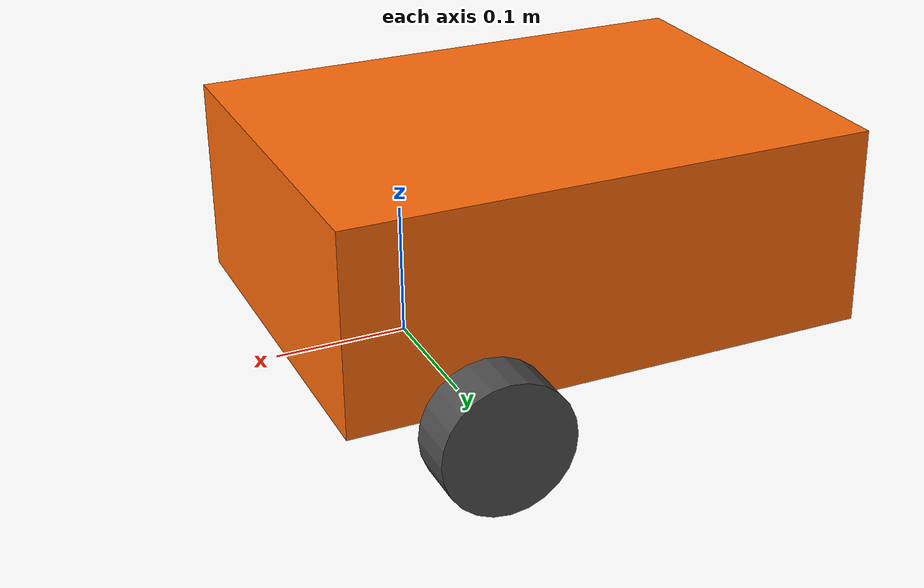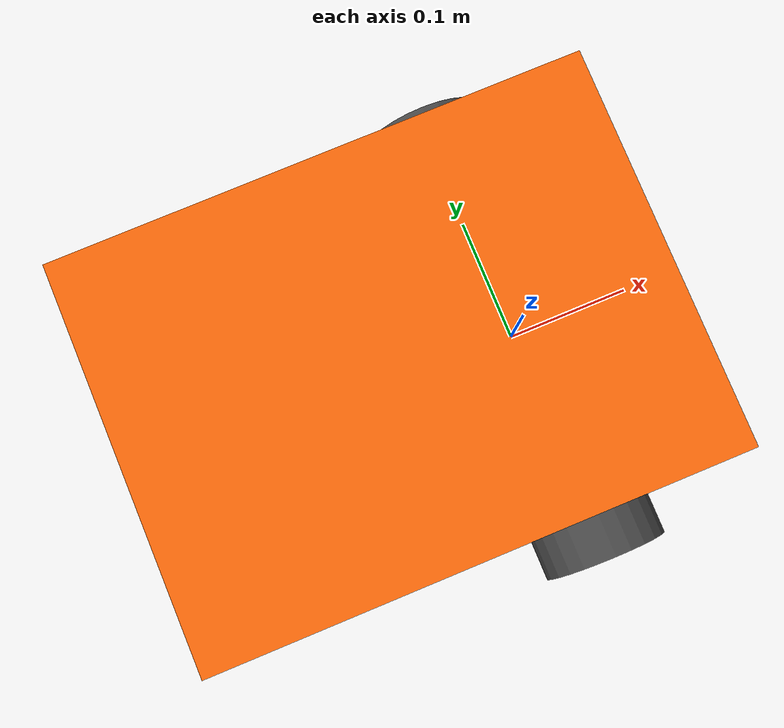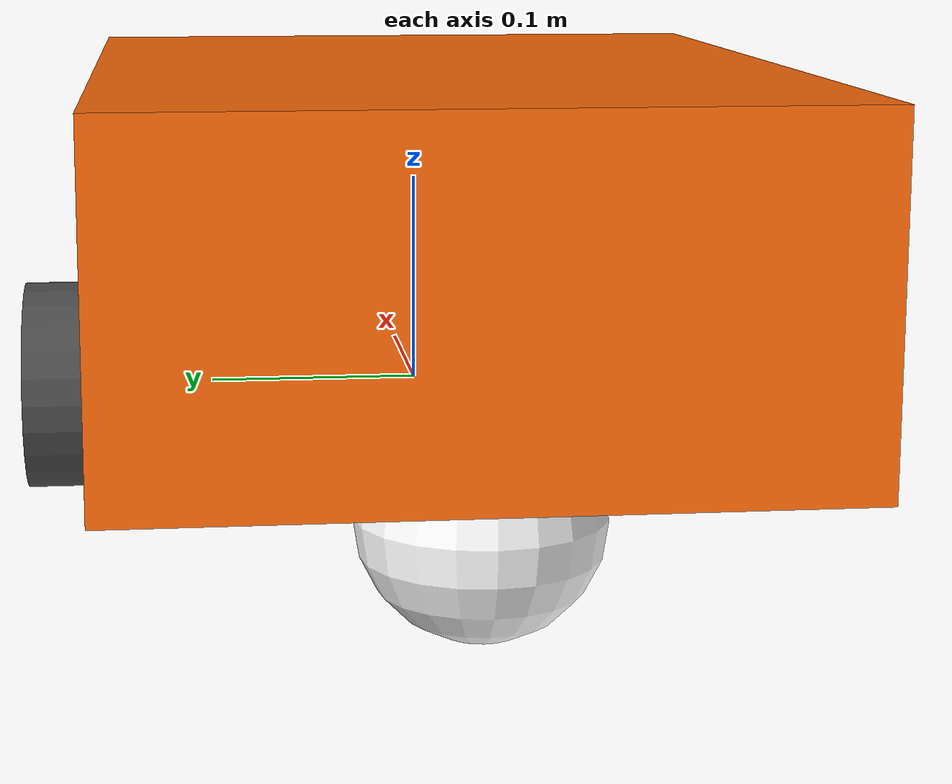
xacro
<?xml version="1.0"?>
<robot xmlns:xacro="http://www.ros.org/wiki/xacro">

  <xacro:include filename="inertial_macros.xacro"/>
  <xacro:include filename="colors.xacro"/>

  <!--  Properties                                                   -->
  <xacro:property name="chassis_length"  value="0.40"/>
  <xacro:property name="chassis_width"   value="0.30"/>
  <xacro:property name="chassis_height"  value="0.15"/>
  <xacro:property name="chassis_mass"    value="5.0"/>

  <xacro:property name="wheel_radius"    value="0.05"/>
  <xacro:property name="wheel_thickness" value="0.04"/>
  <xacro:property name="wheel_mass"      value="0.5"/>
  <xacro:property name="wheel_offset_y"  value="${chassis_width/2 + wheel_thickness/2}"/>
  <xacro:property name="wheel_offset_z"  value="0.0"/>

  <xacro:property name="caster_radius"   value="${wheel_radius}"/>
  <xacro:property name="caster_mass"     value="0.1"/>

  <!--  Base link (footprint on the ground)                          -->
  <link name="base_link"/>

  <!--  Chassis                                                      -->
  <joint name="chassis_joint" type="fixed">
    <parent link="base_link"/>
    <child  link="chassis"/>
    <origin xyz="${-chassis_length*3/4} 0 ${wheel_radius}" rpy="0 0 0"/>
  </joint>

  <link name="chassis">
    <visual>
      <origin xyz="${chassis_length/2} 0 ${chassis_height/4}" rpy="0 0 0"/>
      <geometry>
        <box size="${chassis_length} ${chassis_width} ${chassis_height}"/>
      </geometry>
      <material name="orange"/>
    </visual>
    <collision>
      <origin xyz="${chassis_length/2} 0 ${chassis_height/4}" rpy="0 0 0"/>
      <geometry>
        <box size="${chassis_length} ${chassis_width} ${chassis_height}"/>
      </geometry>
    </collision>
    <xacro:inertial_box mass="${chassis_mass}" x="${chassis_length}" y="${chassis_width}" z="${chassis_height}">
      <origin xyz="${chassis_length/2} 0 ${chassis_height/2}" rpy="0 0 0"/>
    </xacro:inertial_box>
  </link>

  <gazebo reference="chassis">
    <material>Gazebo/Orange</material>
  </gazebo>

  <!--  Drive wheels (left / right)                                  -->
  <xacro:macro name="drive_wheel" params="prefix y_reflect">
    <joint name="${prefix}_wheel_joint" type="continuous">
      <parent link="base_link"/>
      <child  link="${prefix}_wheel"/>
      <origin xyz="0 ${y_reflect * wheel_offset_y} ${wheel_offset_z}" rpy="${-pi/2} 0 0"/>
      <axis xyz="0 0 1"/>
    </joint>

    <link name="${prefix}_wheel">
      <visual>
        <geometry>
          <cylinder radius="${wheel_radius}" length="${wheel_thickness}"/>
        </geometry>
        <material name="dark_grey"/>
      </visual>
      <collision>
        <geometry>
          <cylinder radius="${wheel_radius}" length="${wheel_thickness}"/>
        </geometry>
      </collision>
      <xacro:inertial_cylinder mass="${wheel_mass}" length="${wheel_thickness}" radius="${wheel_radius}">
        <origin xyz="0 0 0" rpy="0 0 0"/>
      </xacro:inertial_cylinder>
    </link>

    <gazebo reference="${prefix}_wheel">
      <material>Gazebo/DarkGrey</material>
      <mu1>1.0</mu1>
      <mu2>1.0</mu2>
    </gazebo>
  </xacro:macro>

  <xacro:drive_wheel prefix="left"  y_reflect="1"/>
  <xacro:drive_wheel prefix="right" y_reflect="-1"/>

  <!--  Caster wheel (rear, frictionless ball)                       -->
  <joint name="caster_wheel_joint" type="fixed">
    <parent link="chassis"/>
    <child  link="caster_wheel"/>
    <origin xyz="${caster_radius} 0 ${-wheel_radius}" rpy="0 0 0"/>
  </joint>

  <link name="caster_wheel">
    <visual>
      <geometry>
        <sphere radius="${caster_radius}"/>
      </geometry>
      <material name="white"/>
    </visual>
    <collision>
      <geometry>
        <sphere radius="${caster_radius}"/>
      </geometry>
    </collision>
    <xacro:inertial_sphere mass="${caster_mass}" radius="${caster_radius}">
      <origin xyz="0 0 0" rpy="0 0 0"/>
    </xacro:inertial_sphere>
  </link>

  <gazebo reference="caster_wheel">
    <material>Gazebo/White</material>
    <mu1>0.001</mu1>
    <mu2>0.001</mu2>
  </gazebo>

</robot>

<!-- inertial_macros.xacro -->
<robot xmlns:xacro="http://www.ros.org/wiki/xacro">

  <!-- Box inertia -->
  <xacro:macro name="inertial_box" params="mass x y z *origin">
    <inertial>
      <xacro:insert_block name="origin"/>
      <mass value="${mass}"/>
      <inertia ixx="${(1/12) * mass * (y*y + z*z)}" ixy="0.0" ixz="0.0"
               iyy="${(1/12) * mass * (x*x + z*z)}" iyz="0.0"
               izz="${(1/12) * mass * (x*x + y*y)}"/>
    </inertial>
  </xacro:macro>

  <!-- Cylinder inertia -->
  <xacro:macro name="inertial_cylinder" params="mass length radius *origin">
    <inertial>
      <xacro:insert_block name="origin"/>
      <mass value="${mass}"/>
      <inertia ixx="${(1/12) * mass * (3*radius*radius + length*length)}" ixy="0.0" ixz="0.0"
               iyy="${(1/12) * mass * (3*radius*radius + length*length)}" iyz="0.0"
               izz="${(1/2) * mass * (radius*radius)}"/>
    </inertial>
  </xacro:macro>

  <!-- Sphere inertia -->
  <xacro:macro name="inertial_sphere" params="mass radius *origin">
    <inertial>
      <xacro:insert_block name="origin"/>
      <mass value="${mass}"/>
      <inertia ixx="${(2/5) * mass * (radius*radius)}" ixy="0.0" ixz="0.0"
               iyy="${(2/5) * mass * (radius*radius)}" iyz="0.0"
               izz="${(2/5) * mass * (radius*radius)}"/>
    </inertial>
  </xacro:macro>

</robot>

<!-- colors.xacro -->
<robot xmlns:xacro="http://www.ros.org/wiki/xacro">

  <material name="white">
    <color rgba="1.0 1.0 1.0 1.0"/>
  </material>

  <material name="black">
    <color rgba="0.0 0.0 0.0 1.0"/>
  </material>

  <material name="dark_grey">
    <color rgba="0.3 0.3 0.3 1.0"/>
  </material>

  <material name="orange">
    <color rgba="1.0 0.42 0.04 1.0"/>
  </material>

  <material name="blue">
    <color rgba="0.2 0.2 1.0 1.0"/>
  </material>

</robot>
